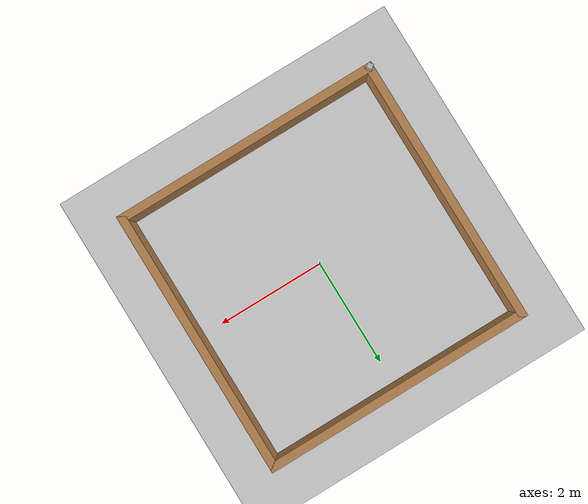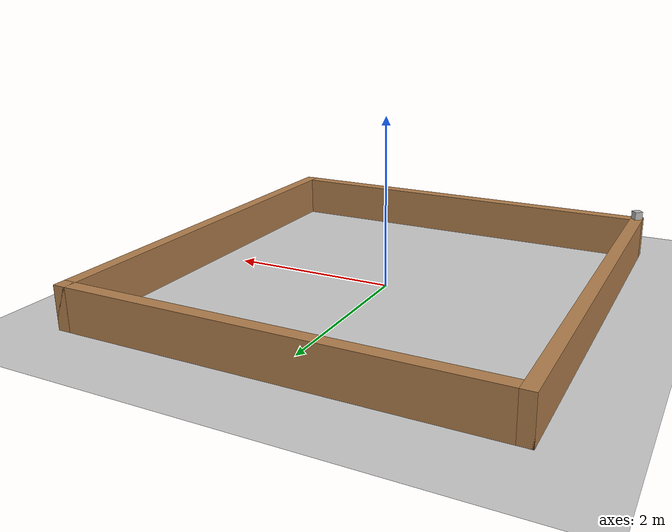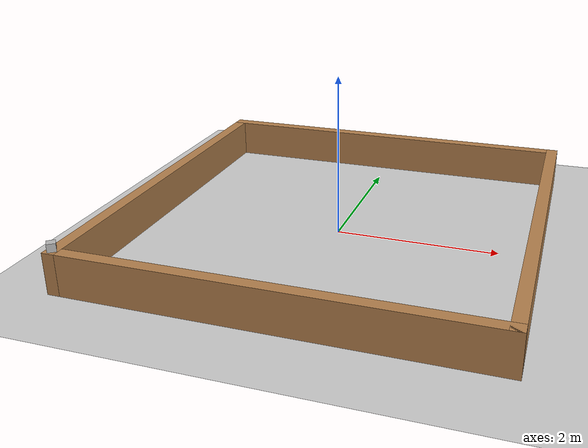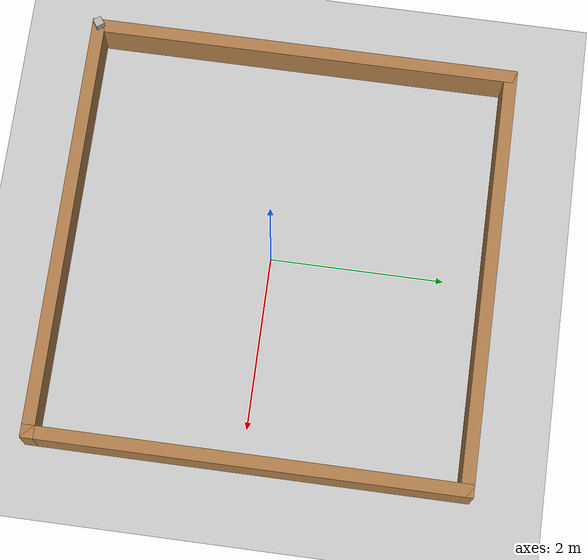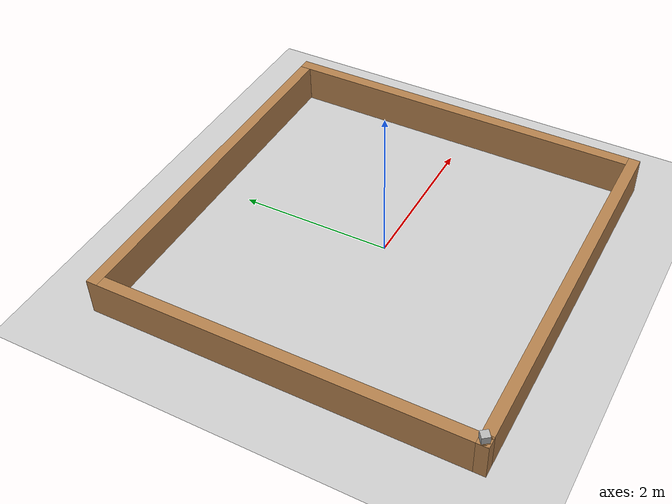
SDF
<sdf version="1.7">
 <world name="default">
  <plugin name="set_entity_state_plugin" filename="libgazebo_ros_state.so">
   <ros><namespace>/demo</namespace></ros>
  </plugin>
  <light name="sun" type="directional">
   <pose>0 0 10 0 -0 0</pose>
   <diffuse>0.8 0.8 0.8 1</diffuse>
   <specular>0.2 0.2 0.2 1</specular>
   <attenuation>
    <range>1000</range>
    <constant>0.9</constant>
    <linear>0.01</linear>
    <quadratic>0.001</quadratic>
   </attenuation>
   <direction>-0.5 0.1 -0.9</direction>
   <spot><inner_angle>0</inner_angle><outer_angle>0</outer_angle><falloff>0</falloff></spot>
  </light>
  <model name="ground_plane">
   <static>1</static>
   <link name="link">
    <collision name="collision">
     <geometry><plane><normal>0 0 1</normal><size>100 100</size></plane></geometry>
     <surface><friction><ode><mu>100</mu><mu2>50</mu2></ode></friction></surface>
    </collision>
    <visual name="visual">
     <cast_shadows>0</cast_shadows>
     <geometry><plane><normal>0 0 1</normal><size>100 100</size></plane></geometry>
     <material>
      <script><uri>file://media/materials/scripts/gazebo.material</uri><name>Gazebo/Grey</name></script>
     </material>
    </visual>
   </link>
  </model>
  <gravity>0 0 -9.8</gravity>
  <magnetic_field>6e-06 2.3e-05 -4.2e-05</magnetic_field>
  <atmosphere type="adiabatic"/>
  <physics type="ode">
   <max_step_size>0.001</max_step_size>
   <real_time_factor>1</real_time_factor>
   <real_time_update_rate>1000</real_time_update_rate>
  </physics>
  <scene><ambient>0.4 0.4 0.4 1</ambient><background>0.7 0.7 0.7 1</background><shadows>1</shadows></scene>
  <audio><device>default</device></audio>
  <spherical_coordinates>
   <surface_model>EARTH_WGS84</surface_model>
   <latitude_deg>0</latitude_deg>
   <longitude_deg>0</longitude_deg>
   <elevation>0</elevation>
   <heading_deg>0</heading_deg>
  </spherical_coordinates>
  <model name="turtlebot3_square">
   <pose>-0.00093 0.060476 0 0 -0 0</pose>
   <link name="Wall_1">
    <collision name="Wall_1_Collision">
     <geometry><box><size>5 0.15 0.5</size></box></geometry>
     <pose>0 0 0.25 0 -0 0</pose>
    </collision>
    <visual name="Wall_1_Visual">
     <pose>0 0 0.25 0 -0 0</pose>
     <geometry><box><size>5 0.15 0.5</size></box></geometry>
     <material>
      <script><uri>file://media/materials/scripts/gazebo.material</uri><name>Gazebo/Wood</name></script>
      <ambient>1 1 1 1</ambient>
     </material>
    </visual>
    <pose>-2.425 0 0 0 -0 1.5708</pose>
   </link>
   <link name="Wall_2">
    <collision name="Wall_2_Collision">
     <geometry><box><size>5 0.15 0.5</size></box></geometry>
     <pose>0 0 0.25 0 -0 0</pose>
    </collision>
    <visual name="Wall_2_Visual">
     <pose>0 0 0.25 0 -0 0</pose>
     <geometry><box><size>5 0.15 0.5</size></box></geometry>
     <material>
      <script><uri>file://media/materials/scripts/gazebo.material</uri><name>Gazebo/Wood</name></script>
      <ambient>1 1 1 1</ambient>
     </material>
    </visual>
    <pose>0 2.425 0 0 -0 0</pose>
   </link>
   <link name="Wall_3">
    <collision name="Wall_3_Collision">
     <geometry><box><size>5 0.15 0.5</size></box></geometry>
     <pose>0 0 0.25 0 -0 0</pose>
    </collision>
    <visual name="Wall_3_Visual">
     <pose>0 0 0.25 0 -0 0</pose>
     <geometry><box><size>5 0.15 0.5</size></box></geometry>
     <material>
      <script><uri>file://media/materials/scripts/gazebo.material</uri><name>Gazebo/Wood</name></script>
      <ambient>1 1 1 1</ambient>
     </material>
    </visual>
    <pose>2.425 0 0 0 0 -1.5708</pose>
   </link>
   <link name="Wall_4">
    <collision name="Wall_4_Collision">
     <geometry><box><size>5 0.15 0.5</size></box></geometry>
     <pose>0 0 0.25 0 -0 0</pose>
    </collision>
    <visual name="Wall_4_Visual">
     <pose>0 0 0.25 0 -0 0</pose>
     <geometry><box><size>5 0.15 0.5</size></box></geometry>
     <material>
      <script><uri>file://media/materials/scripts/gazebo.material</uri><name>Gazebo/Wood</name></script>
      <ambient>1 1 1 1</ambient>
     </material>
    </visual>
    <pose>0 -2.425 0 0 -0 3.14159</pose>
   </link>
   <static>1</static>
  </model>
  <model name="corner_camera">
   <pose>-2.4266 -2.35571 0.55 0 -0 0.647751</pose>
   <link name="link">
    <inertial>
     <mass>0.1</mass>
     <inertia>
      <ixx>0.000166667</ixx>
      <iyy>0.000166667</iyy>
      <izz>0.000166667</izz>
      <ixy>0</ixy>
      <ixz>0</ixz>
      <iyz>0</iyz>
     </inertia>
    </inertial>
    <collision name="collision"><geometry><box><size>0.1 0.1 0.1</size></box></geometry></collision>
    <visual name="visual"><geometry><box><size>0.1 0.1 0.1</size></box></geometry></visual>
    <sensor name="corner_camera" type="camera">
     <camera>
      <horizontal_fov>1.047</horizontal_fov>
      <image><width>320</width><height>240</height></image>
      <clip><near>0.1</near><far>100</far></clip>
     </camera>
     <always_on>1</always_on>
     <update_rate>30</update_rate>
     <visualize>1</visualize>
     <plugin name="camera_controller" filename="libgazebo_ros_camera.so">
      <alwaysOn>1</alwaysOn>
      <updateRate>0.0</updateRate>
      <cameraName>walls/camera1</cameraName>
      <imageTopicName>image_raw</imageTopicName>
      <cameraInfoTopicName>camera_info</cameraInfoTopicName>
      <frameName>camera_link</frameName>
      <hackBaseline>0.07</hackBaseline>
      <distortionK1>0.0</distortionK1>
      <distortionK2>0.0</distortionK2>
      <distortionK3>0.0</distortionK3>
      <distortionT1>0.0</distortionT1>
      <distortionT2>0.0</distortionT2>
     </plugin>
    </sensor>
   </link>
  </model>
 </world>
</sdf>
